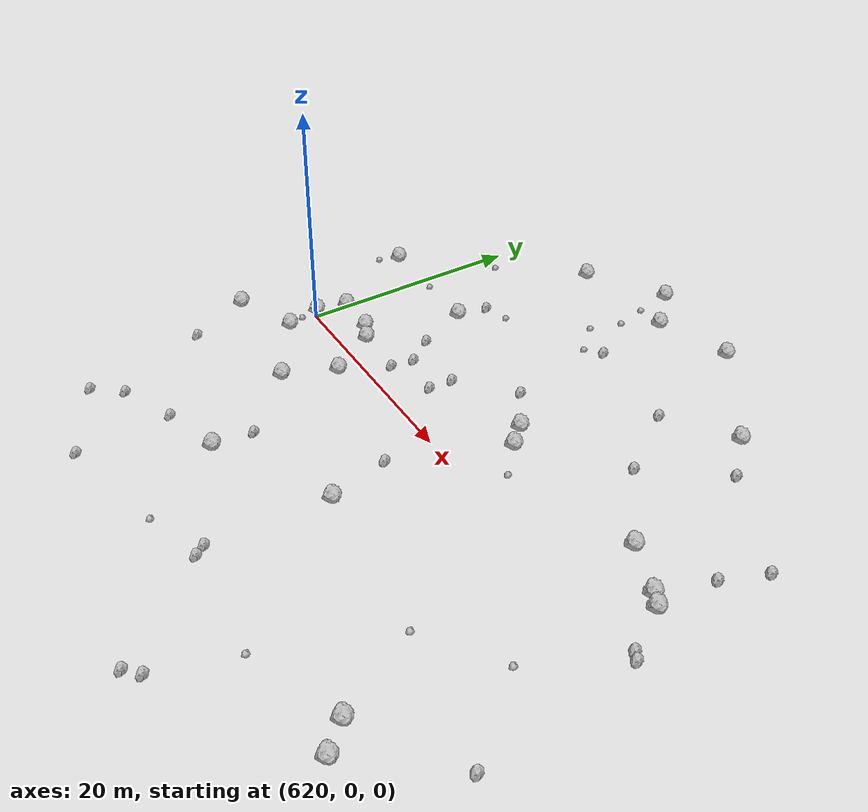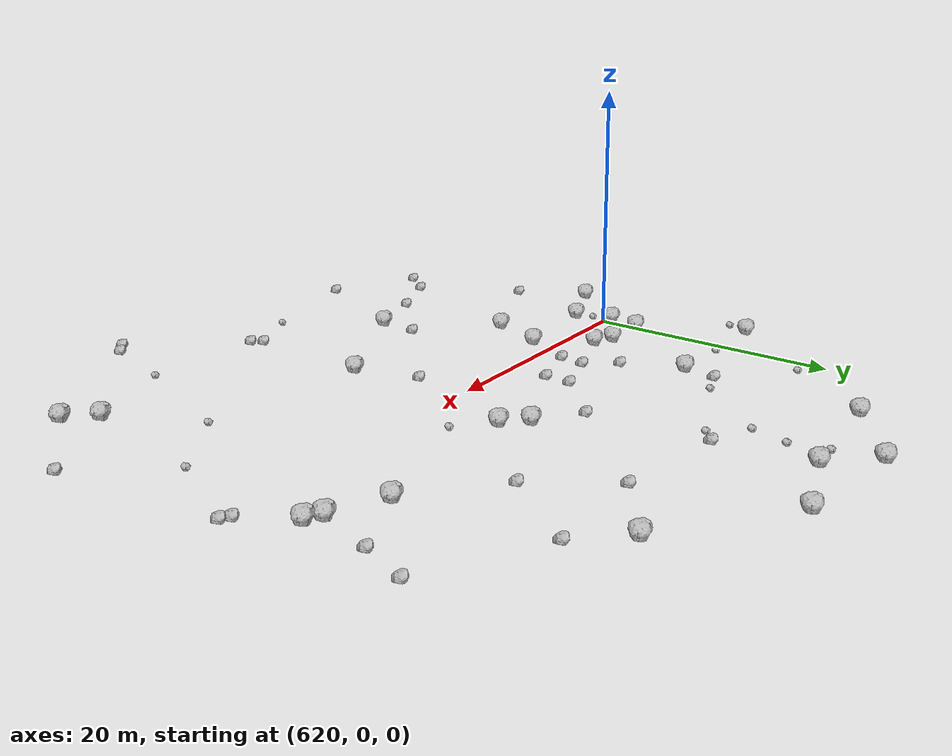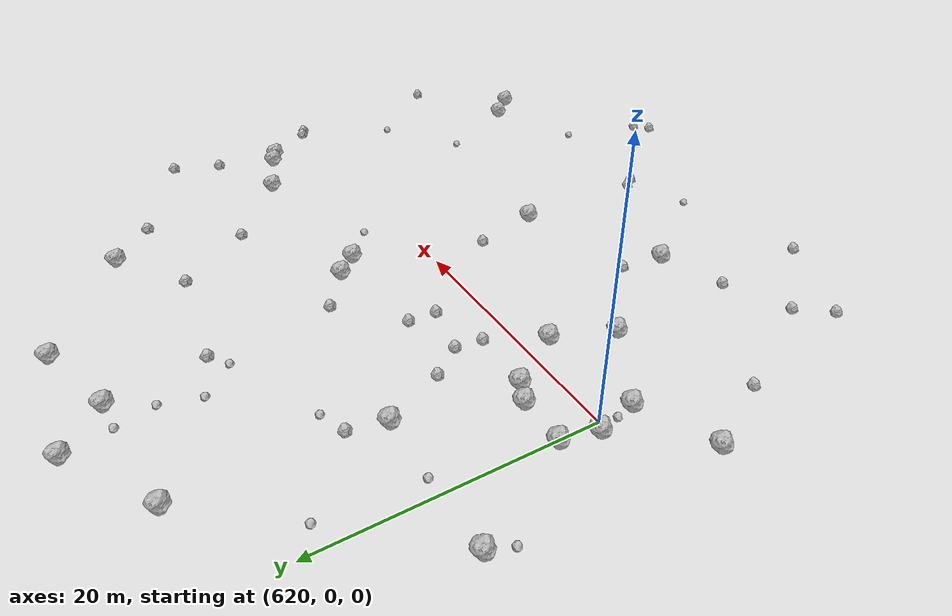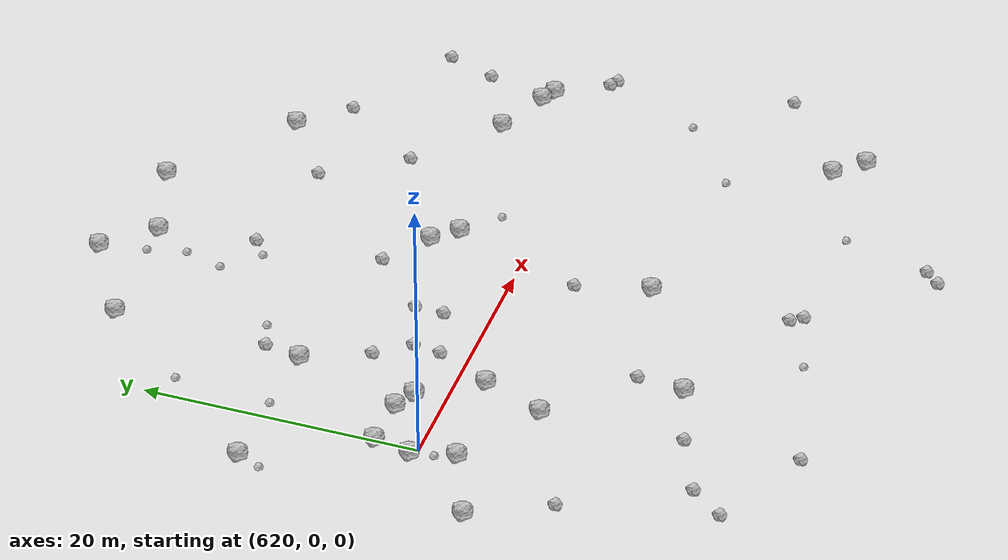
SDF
<sdf version="1.6">
 <world name="default">
  <include><uri>model://sun</uri></include>
  <model name="rock1_16_3">
   <include><uri>model://rock1</uri><pose>661.1595580800916 4.9867016557083375 0.5 0 0 0</pose></include>
  </model>
  <model name="rock1_16_4">
   <include><uri>model://rock1</uri><pose>626.5388910367853 11.107678417627326 0.5 0 0 0</pose></include>
  </model>
  <model name="rock1_16_5">
   <include><uri>model://rock1</uri><pose>641.683445577235 -9.640824515676918 0.5 0 0 0</pose></include>
  </model>
  <model name="rock1_16_6">
   <include><uri>model://rock1</uri><pose>633.8831695580021 29.22162910383593 0.5 0 0 0</pose></include>
  </model>
  <model name="rock1_16_7">
   <include><uri>model://rock1</uri><pose>652.4190516966922 21.25356345820373 0.5 0 0 0</pose></include>
  </model>
  <model name="rock1_16_8">
   <include><uri>model://rock1</uri><pose>643.7544106536594 5.40387949202443 0.5 0 0 0</pose></include>
  </model>
  <model name="rock1_16_9">
   <include><uri>model://rock1</uri><pose>657.0140650613154 6.715314789884978 0.5 0 0 0</pose></include>
  </model>
  <model name="rock1_16_10">
   <include><uri>model://rock1</uri><pose>642.199966739723 7.097685612510233 0.5 0 0 0</pose></include>
  </model>
  <model name="rock1_16_11">
   <include><uri>model://rock1</uri><pose>627.2631997890783 25.184999531730035 0.5 0 0 0</pose></include>
  </model>
  <model name="rock1_16_12">
   <include><uri>model://rock1</uri><pose>628.1039334681051 -1.9775768089436028 0.5 0 0 0</pose></include>
  </model>
  <model name="rock1_16_13">
   <include><uri>model://rock1</uri><pose>659.1814141325854 -18.026568919857144 0.5 0 0 0</pose></include>
  </model>
  <model name="rock1_16_14">
   <include><uri>model://rock1</uri><pose>626.3016755208489 -6.465547695103471 0.5 0 0 0</pose></include>
  </model>
  <model name="rock1_16_15">
   <include><uri>model://rock1</uri><pose>661.0874109887275 -20.069202013452255 0.5 0 0 0</pose></include>
  </model>
  <model name="rock1_16_16">
   <include><uri>model://rock1</uri><pose>614.6911886856064 -4.998851777201352 0.5 0 0 0</pose></include>
  </model>
  <model name="rock1_16_17">
   <include><uri>model://rock1</uri><pose>662.2980764233356 4.357352681261297 0.5 0 0 0</pose></include>
  </model>
  <model name="rock1_16_18">
   <include><uri>model://rock1</uri><pose>637.006890559293 25.93339353622798 0.5 0 0 0</pose></include>
  </model>
  <model name="rock1_16_19">
   <include><uri>model://rock1</uri><pose>619.3392411323097 0.4293907525447054 0.5 0 0 0</pose></include>
  </model>
  <model name="rock1_16_20">
   <include><uri>model://rock1</uri><pose>643.4698186829048 27.966579377186427 0.5 0 0 0</pose></include>
  </model>
  <model name="rock1_16_21">
   <include><uri>model://rock1</uri><pose>631.6230393897413 -15.076492406204949 0.5 0 0 0</pose></include>
  </model>
  <model name="rock1_16_22">
   <include><uri>model://rock1</uri><pose>625.3751671952878 2.2492651698892843 0.5 0 0 0</pose></include>
  </model>
  <model name="rock1_16_23">
   <include><uri>model://rock1</uri><pose>620.1391775582432 -2.6787348615878592 0.5 0 0 0</pose></include>
  </model>
  <model name="rock1_16_24">
   <include><uri>model://rock1</uri><pose>619.9490931184889 3.1453131830263388 0.5 0 0 0</pose></include>
  </model>
  <model name="rock1_16_25">
   <include><uri>model://rock1</uri><pose>623.7409289189164 3.0400359884358323 0.5 0 0 0</pose></include>
  </model>
  <model name="rock1_16_26">
   <include><uri>model://rock1</uri><pose>615.5341474961086 11.275830058450161 0.5 0 0 0</pose></include>
  </model>
  <model name="rock2_16_0">
   <include><uri>model://rock2</uri><pose>619.903043499733 -21.10948933452938 0.3 0 0 0</pose></include>
  </model>
  <model name="rock2_16_1">
   <include><uri>model://rock2</uri><pose>664.0652183616157 13.198123076298394 0.3 0 0 0</pose></include>
  </model>
  <model name="rock2_16_2">
   <include><uri>model://rock2</uri><pose>634.4231292504801 5.478611594530541 0.3 0 0 0</pose></include>
  </model>
  <model name="rock2_16_3">
   <include><uri>model://rock2</uri><pose>638.768427662176 9.520316538945593 0.3 0 0 0</pose></include>
  </model>
  <model name="rock2_16_4">
   <include><uri>model://rock2</uri><pose>666.6350187600051 -13.002920935894537 0.3 0 0 0</pose></include>
  </model>
  <model name="rock2_16_5">
   <include><uri>model://rock2</uri><pose>637.9747719109351 18.825482399268864 0.3 0 0 0</pose></include>
  </model>
  <model name="rock2_16_6">
   <include><uri>model://rock2</uri><pose>665.1026091023618 0.32729524959970746 0.3 0 0 0</pose></include>
  </model>
  <model name="rock2_16_7">
   <include><uri>model://rock2</uri><pose>627.0644500670164 13.840359653118902 0.3 0 0 0</pose></include>
  </model>
  <model name="rock2_16_8">
   <include><uri>model://rock2</uri><pose>628.5600774370411 6.5114668365140815 0.3 0 0 0</pose></include>
  </model>
  <model name="rock2_16_9">
   <include><uri>model://rock2</uri><pose>630.3581813552037 4.134558053996514 0.3 0 0 0</pose></include>
  </model>
  <model name="rock2_16_10">
   <include><uri>model://rock2</uri><pose>630.0864706998708 2.0805752997516294 0.3 0 0 0</pose></include>
  </model>
  <model name="rock2_16_11">
   <include><uri>model://rock2</uri><pose>617.41669578347 -10.498755987225529 0.3 0 0 0</pose></include>
  </model>
  <model name="rock2_16_12">
   <include><uri>model://rock2</uri><pose>621.7884529444225 -18.71850870031406 0.3 0 0 0</pose></include>
  </model>
  <model name="rock2_16_13">
   <include><uri>model://rock2</uri><pose>627.069884524197 -24.6233040201313 0.3 0 0 0</pose></include>
  </model>
  <model name="rock2_16_14">
   <include><uri>model://rock2</uri><pose>662.6287423651593 9.529562834577312 0.3 0 0 0</pose></include>
  </model>
  <model name="rock2_16_15">
   <include><uri>model://rock2</uri><pose>664.432915962734 0.7266289322910744 0.3 0 0 0</pose></include>
  </model>
  <model name="rock2_16_16">
   <include><uri>model://rock2</uri><pose>631.9374647063714 -11.641263544090133 0.3 0 0 0</pose></include>
  </model>
  <model name="rock2_16_17">
   <include><uri>model://rock2</uri><pose>655.4722816532319 17.959896940044693 0.3 0 0 0</pose></include>
  </model>
  <model name="rock2_16_18">
   <include><uri>model://rock2</uri><pose>640.2619762272218 -4.337659747020531 0.3 0 0 0</pose></include>
  </model>
  <model name="rock2_16_19">
   <include><uri>model://rock2</uri><pose>650.8236104522676 11.74329236254139 0.3 0 0 0</pose></include>
  </model>
  <model name="rock2_16_20">
   <include><uri>model://rock2</uri><pose>634.328712929095 3.3300571613750307 0.3 0 0 0</pose></include>
  </model>
  <model name="rock2_16_21">
   <include><uri>model://rock2</uri><pose>649.7442239423041 -27.513868362367553 0.3 0 0 0</pose></include>
  </model>
  <model name="rock2_16_22">
   <include><uri>model://rock2</uri><pose>646.934639770163 17.49707530899674 0.3 0 0 0</pose></include>
  </model>
  <model name="rock2_16_23">
   <include><uri>model://rock2</uri><pose>648.6896448585804 -28.56699708793405 0.3 0 0 0</pose></include>
  </model>
  <model name="rock2_16_24">
   <include><uri>model://rock2</uri><pose>626.53246082579 -16.62034294824523 0.3 0 0 0</pose></include>
  </model>
  <model name="rock2_16_25">
   <include><uri>model://rock2</uri><pose>641.3175643396874 -19.811147264415965 0.3 0 0 0</pose></include>
  </model>
  <model name="rock2_16_26">
   <include><uri>model://rock2</uri><pose>641.9424363970983 -20.67695768164805 0.3 0 0 0</pose></include>
  </model>
  <model name="rock3_16_0">
   <include><uri>model://rock3</uri><pose>651.5617519886338 -21.156792458900103 0.2 0 0 0</pose></include>
  </model>
  <model name="rock3_16_1">
   <include><uri>model://rock3</uri><pose>655.442049648893 -11.039329880483567 0.2 0 0 0</pose></include>
  </model>
  <model name="rock3_16_2">
   <include><uri>model://rock3</uri><pose>636.5700877584715 17.73528047344761 0.2 0 0 0</pose></include>
  </model>
  <model name="rock3_16_3">
   <include><uri>model://rock3</uri><pose>621.3165510020428 11.258945120968448 0.2 0 0 0</pose></include>
  </model>
  <model name="rock3_16_4">
   <include><uri>model://rock3</uri><pose>634.5103679993327 25.816761745862678 0.2 0 0 0</pose></include>
  </model>
  <model name="rock3_16_5">
   <include><uri>model://rock3</uri><pose>619.6317057699895 -1.2357192998659485 0.2 0 0 0</pose></include>
  </model>
  <model name="rock3_16_6">
   <include><uri>model://rock3</uri><pose>646.2988231152541 3.062259357266896 0.2 0 0 0</pose></include>
  </model>
  <model name="rock3_16_7">
   <include><uri>model://rock3</uri><pose>661.2914046712798 -6.766207863101247 0.2 0 0 0</pose></include>
  </model>
  <model name="rock3_16_8">
   <include><uri>model://rock3</uri><pose>635.17503275245 22.99561967434967 0.2 0 0 0</pose></include>
  </model>
  <model name="rock3_16_9">
   <include><uri>model://rock3</uri><pose>636.7253482436437 -22.157231040775336 0.2 0 0 0</pose></include>
  </model>
  <model name="rock3_16_10">
   <include><uri>model://rock3</uri><pose>621.7617007637189 18.369296201203085 0.2 0 0 0</pose></include>
  </model>
  <model name="rock3_16_11">
   <include><uri>model://rock3</uri><pose>614.7921058654758 9.497849452398576 0.2 0 0 0</pose></include>
  </model>
  <model name="rock3_16_12">
   <include><uri>model://rock3</uri><pose>629.1839670605731 14.528366642396044 0.2 0 0 0</pose></include>
  </model>
  <model name="rock3_16_13">
   <include><uri>model://rock3</uri><pose>634.3486766016423 20.138406743805277 0.2 0 0 0</pose></include>
  </model>
 </world>
</sdf>
